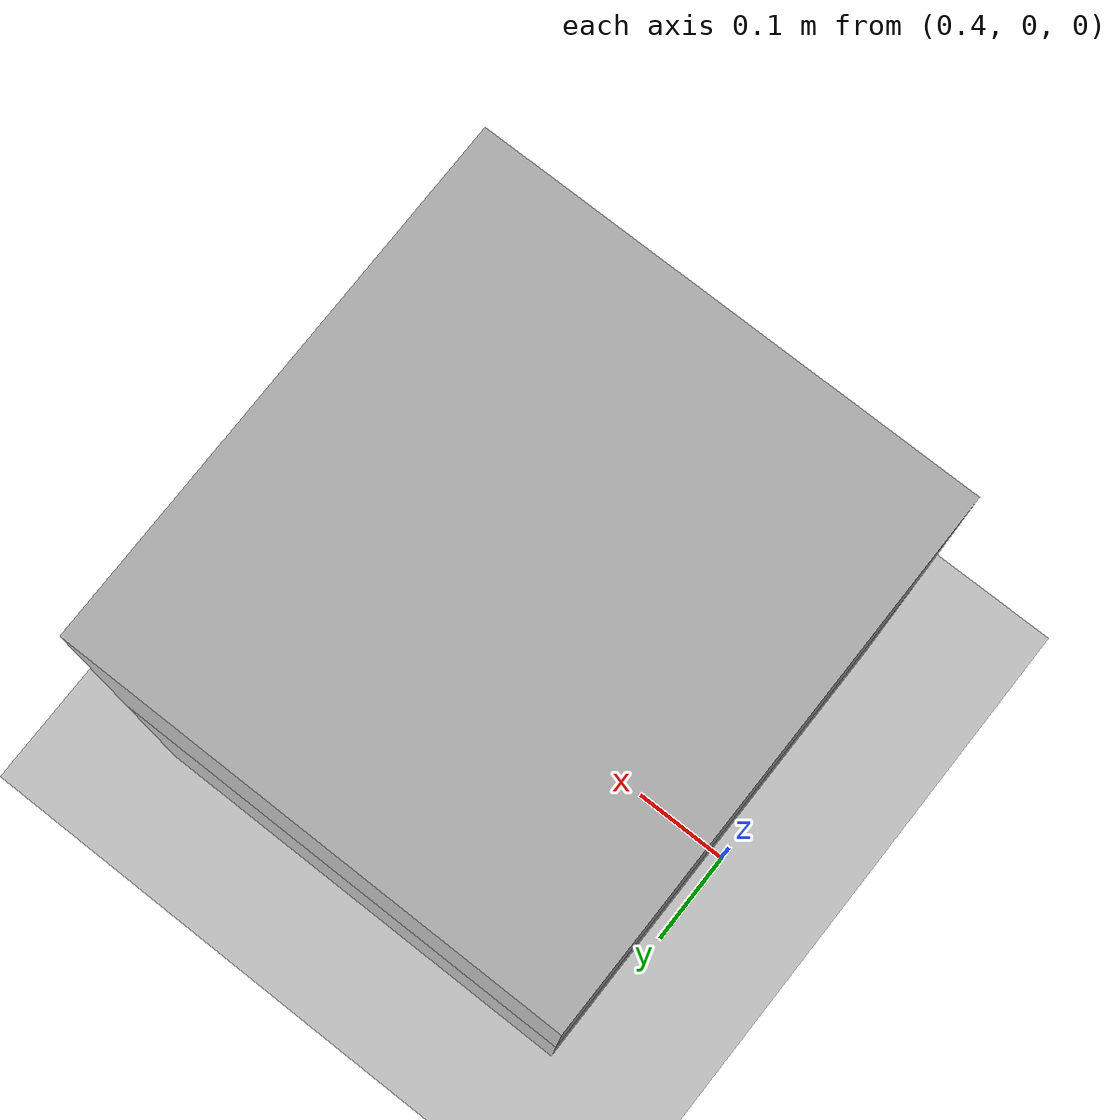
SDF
<?xml version="1.0" ?>
<sdf version="1.5">
  <world name="default">

    <!-- Sky with clouds -->
    <scene>
      <sky>
        <clouds>
            <speed>0</speed>
        </clouds>
      </sky>
    </scene>

    <!-- A global light source -->
    <include>
      <uri>model://sun</uri>
    </include>
    <!-- A ground plane -->
    <include>
      <uri>model://ground_plane</uri>
    </include>

      <!-- Focus camera on a desired location -->
    <gui fullscreen='0'>
      <camera name='user_camera'>
        <!-- pose is (m) X Y Z (rad) R P Y -->
        <pose>0.264105 3.266872 0.837978 0 0.06 -1.59881</pose>
        <view_controller>orbit</view_controller>
      </camera>
    </gui>

    <!-- Objects in the world -->
    <model name='two_boxes'>

      <link name='box_1'>
        <pose>0.65 0 0.16125 0 0 0</pose>
        <inertial>
          <mass>2.5</mass>
          <pose>0 0 0 0 0 0</pose>
          <inertia>
            <ixx>0.140859375</ixx>
            <ixy>0</ixy>
            <ixz>0</ixz>
            <iyy>0.123677083</iyy>
            <iyz>0</iyz>
            <izz>0.101192708</izz>
          </inertia>
        </inertial>
        <collision name='b1_collision'>
          <pose>0 0 0 0 0 0</pose>
          <geometry>
            <box>
              <size>0.475 0.51 0.3225</size>
            </box>
          </geometry>
          <max_contacts>10</max_contacts>
          <surface>
            <contact>
              <collide_bitmask>65535</collide_bitmask>
              <ode/>
            </contact>
            <friction>
              <ode>
                <mu>0.21</mu>
                <mu2>0.21S</mu2>
              </ode>
              <torsional>
                <ode/>
              </torsional>
            </friction>
            <bounce/>
          </surface>
        </collision>
        <visual name='b1_visual'>
          <pose>0 0 0 0 0 0</pose>
          <geometry>
            <box>
              <size>0.475 0.51 0.3225</size>
            </box>
          </geometry>
        </visual>
        <gravity>1</gravity>
      </link>

      <link name='box_2'>
        <pose>0.65 0 0.4837 0 0 0</pose>
        <collision name='b2_collision'>
          <pose>0 0 0 0 0 0</pose>
          <geometry>
            <box>
              <size>0.475 0.51 0.3225</size>
            </box>
          </geometry>
          <max_contacts>10</max_contacts>
          <surface>
          <contact>
            <collide_bitmask>65535</collide_bitmask>
            <ode/>
          </contact>
          <friction>
            <ode>
              <mu>10</mu>
              <mu2>10</mu2>
            </ode>
            <torsional>
              <ode/>
            </torsional>
          </friction>
          <bounce/>
        </surface>
        </collision>
        <visual name='b2_visual'>
          <pose>0 0 0 0 0 0</pose>
          <geometry>
            <box>
              <size>0.475 0.51 0.3225</size>
            </box>
          </geometry>
        </visual>
        <inertial>
          <inertia>
            <ixx>0.140859375</ixx>
            <ixy>0</ixy>
            <ixz>0</ixz>
            <iyy>0.133677083</iyy>
            <iyz>0</iyz>
            <izz>0.101192708</izz>
          </inertia>
          <mass>2.5</mass>
        </inertial>
        <gravity>1</gravity>
      </link>

      <joint name='boxes_union' type='fixed'>
        <parent>box_1</parent>
        <child>box_2</child>
        <pose>0 0 0.3225 0 0 0</pose>
        <axis>
          <xyz>0 0 1</xyz>
          <limit>
            <lower>0</lower>
            <upper>1.58</upper>
          </limit>
          <dynamics>
            <damping>1</damping>
            <friction>10</friction>
            <spring_reference>0</spring_reference>
            <spring_stiffness>0</spring_stiffness>
          </dynamics>
          <use_parent_model_frame>1</use_parent_model_frame>
        </axis>
        <physics>
          <ode>
            <cfm_damping>1</cfm_damping>
            <limit>
              <cfm>0</cfm>
              <erp>0.2</erp>
            </limit>
          </ode>
        </physics>
      </joint>

    </model>

  </world>

</sdf>
